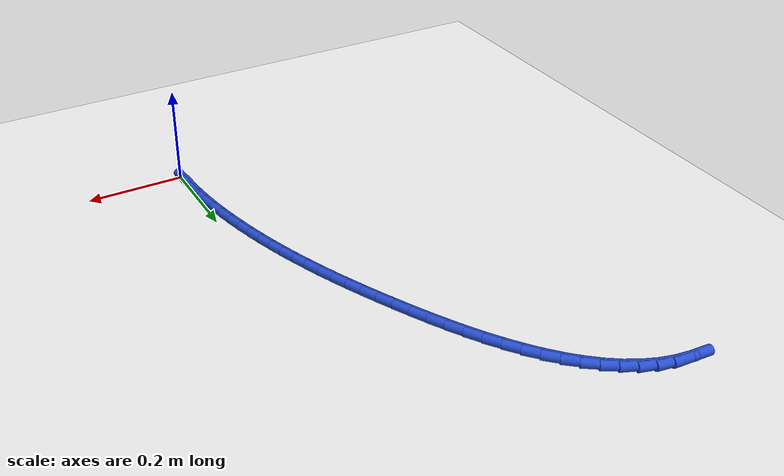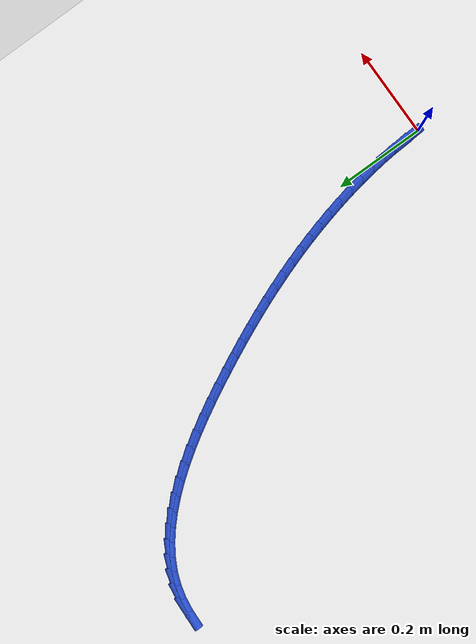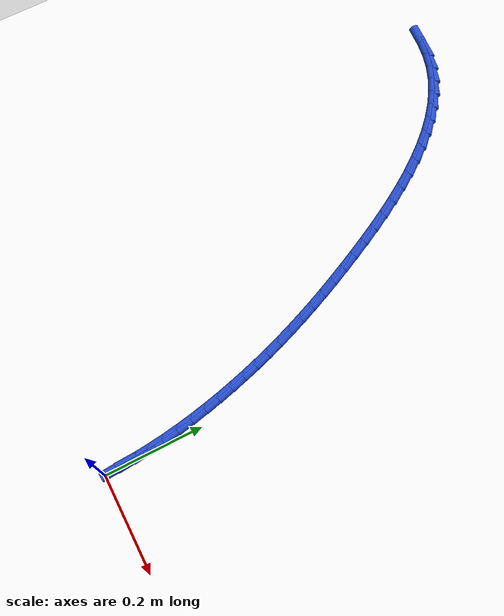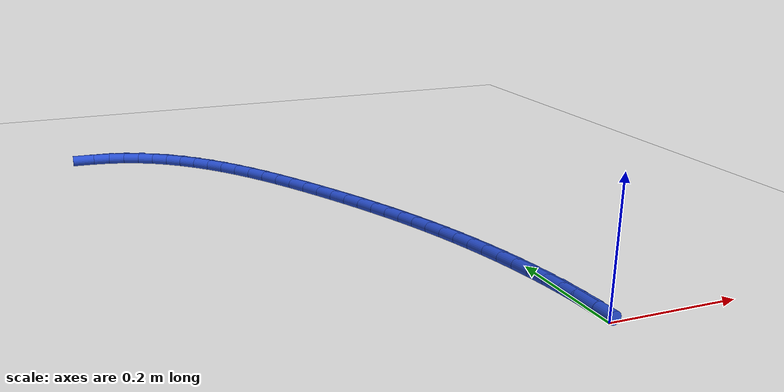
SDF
<sdf version="1.6">
 <world name="default">
  <model name="ground_plane">
   <static>1</static>
   <link name="link">
    <collision name="collision">
     <geometry><plane><normal>0 0 1</normal><size>100 100</size></plane></geometry>
     <surface><friction><ode><mu>100</mu><mu2>50</mu2></ode></friction></surface>
    </collision>
    <visual name="visual">
     <cast_shadows>0</cast_shadows>
     <geometry><plane><normal>0 0 1</normal><size>100 100</size></plane></geometry>
     <material>
      <script><uri>file://media/materials/scripts/gazebo.material</uri><name>Gazebo/WhiteGlow</name></script>
     </material>
    </visual>
   </link>
  </model>
  <model name="line">
   <link name="link_2">
    <pose>-0.002640127792043446 0.06468163625894327 0.01 0 1.57 -1.4796041190122342</pose>
    <collision name="collision">
     <geometry><cylinder><radius>0.01</radius><length>0.08</length></cylinder></geometry>
    </collision>
    <visual name="visual">
     <material>
      <script><name>Gazebo/Blue</name><uri>file://media/materials/scripts/gazebo.material</uri></script>
     </material>
     <geometry><cylinder><radius>0.01</radius><length>0.08</length></cylinder></geometry>
    </visual>
   </link>
   <link name="link_3">
    <pose>-0.005595584413329633 0.09700083987464508 0.01 0 1.57 -1.4486975101030588</pose>
    <collision name="collision">
     <geometry><cylinder><radius>0.01</radius><length>0.08</length></cylinder></geometry>
    </collision>
    <visual name="visual">
     <material>
      <script><name>Gazebo/Blue</name><uri>file://media/materials/scripts/gazebo.material</uri></script>
     </material>
     <geometry><cylinder><radius>0.01</radius><length>0.08</length></cylinder></geometry>
    </visual>
   </link>
   <link name="link_4">
    <pose>-0.009550587201882366 0.1292315317612789 0.01 0 1.57 -1.4196662057281555</pose>
    <collision name="collision">
     <geometry><cylinder><radius>0.01</radius><length>0.08</length></cylinder></geometry>
    </collision>
    <visual name="visual">
     <material>
      <script><name>Gazebo/Blue</name><uri>file://media/materials/scripts/gazebo.material</uri></script>
     </material>
     <geometry><cylinder><radius>0.01</radius><length>0.08</length></cylinder></geometry>
    </visual>
   </link>
   <link name="link_5">
    <pose>-0.014437099420519316 0.16131813537892853 0.01 0 1.57 -1.3923894360186462</pose>
    <collision name="collision">
     <geometry><cylinder><radius>0.01</radius><length>0.08</length></cylinder></geometry>
    </collision>
    <visual name="visual">
     <material>
      <script><name>Gazebo/Blue</name><uri>file://media/materials/scripts/gazebo.material</uri></script>
     </material>
     <geometry><cylinder><radius>0.01</radius><length>0.08</length></cylinder></geometry>
    </visual>
   </link>
   <link name="link_6">
    <pose>-0.020187084332058153 0.19320507418767763 0.01 0 1.57 -1.3667501006793694</pose>
    <collision name="collision">
     <geometry><cylinder><radius>0.01</radius><length>0.08</length></cylinder></geometry>
    </collision>
    <visual name="visual">
     <material>
      <script><name>Gazebo/Blue</name><uri>file://media/materials/scripts/gazebo.material</uri></script>
     </material>
     <geometry><cylinder><radius>0.01</radius><length>0.08</length></cylinder></geometry>
    </visual>
   </link>
   <link name="link_7">
    <pose>-0.026732505199316553 0.22483677164761018 0.01 0 1.57 -1.3426360899340068</pose>
    <collision name="collision">
     <geometry><cylinder><radius>0.01</radius><length>0.08</length></cylinder></geometry>
    </collision>
    <visual name="visual">
     <material>
      <script><name>Gazebo/Blue</name><uri>file://media/materials/scripts/gazebo.material</uri></script>
     </material>
     <geometry><cylinder><radius>0.01</radius><length>0.08</length></cylinder></geometry>
    </visual>
   </link>
   <link name="link_8">
    <pose>-0.0340053252851122 0.2561576512188099 0.01 0 1.57 -1.319939995945289</pose>
    <collision name="collision">
     <geometry><cylinder><radius>0.01</radius><length>0.08</length></cylinder></geometry>
    </collision>
    <visual name="visual">
     <material>
      <script><name>Gazebo/Blue</name><uri>file://media/materials/scripts/gazebo.material</uri></script>
     </material>
     <geometry><cylinder><radius>0.01</radius><length>0.08</length></cylinder></geometry>
    </visual>
   </link>
   <link name="link_9">
    <pose>-0.0419375745196763 0.2871122526668698 0.01 0 1.57 -1.2982507750133787</pose>
    <collision name="collision">
     <geometry><cylinder><radius>0.01</radius><length>0.08</length></cylinder></geometry>
    </collision>
    <visual name="visual">
     <material>
      <script><name>Gazebo/Blue</name><uri>file://media/materials/scripts/gazebo.material</uri></script>
     </material>
     <geometry><cylinder><radius>0.01</radius><length>0.08</length></cylinder></geometry>
    </visual>
   </link>
   <link name="link_10">
    <pose>-0.05048127783847042 0.3176799983055524 0.01 0 1.57 -1.2768563255201584</pose>
    <collision name="collision">
     <geometry><cylinder><radius>0.01</radius><length>0.08</length></cylinder></geometry>
    </collision>
    <visual name="visual">
     <material>
      <script><name>Gazebo/Blue</name><uri>file://media/materials/scripts/gazebo.material</uri></script>
     </material>
     <geometry><cylinder><radius>0.01</radius><length>0.08</length></cylinder></geometry>
    </visual>
   </link>
   <link name="link_11">
    <pose>-0.05963636618580562 0.3479238855035927 0.01 0 1.57 -1.255811889309616</pose>
    <collision name="collision">
     <geometry><cylinder><radius>0.01</radius><length>0.08</length></cylinder></geometry>
    </collision>
    <visual name="visual">
     <material>
      <script><name>Gazebo/Blue</name><uri>file://media/materials/scripts/gazebo.material</uri></script>
     </material>
     <geometry><cylinder><radius>0.01</radius><length>0.08</length></cylinder></geometry>
    </visual>
   </link>
   <link name="link_12">
    <pose>-0.06940979589705236 0.3779191678676826 0.01 0 1.57 -1.2352854865000094</pose>
    <collision name="collision">
     <geometry><cylinder><radius>0.01</radius><length>0.08</length></cylinder></geometry>
    </collision>
    <visual name="visual">
     <material>
      <script><name>Gazebo/Blue</name><uri>file://media/materials/scripts/gazebo.material</uri></script>
     </material>
     <geometry><cylinder><radius>0.01</radius><length>0.08</length></cylinder></geometry>
    </visual>
   </link>
   <link name="link_13">
    <pose>-0.07980852330758101 0.40774109900451294 0.01 0 1.57 -1.2154354065618396</pose>
    <collision name="collision">
     <geometry><cylinder><radius>0.01</radius><length>0.08</length></cylinder></geometry>
    </collision>
    <visual name="visual">
     <material>
      <script><name>Gazebo/Blue</name><uri>file://media/materials/scripts/gazebo.material</uri></script>
     </material>
     <geometry><cylinder><radius>0.01</radius><length>0.08</length></cylinder></geometry>
    </visual>
   </link>
   <link name="link_14">
    <pose>-0.090839504752762 0.4374649325207753 0.01 0 1.57 -1.196405954214558</pose>
    <collision name="collision">
     <geometry><cylinder><radius>0.01</radius><length>0.08</length></cylinder></geometry>
    </collision>
    <visual name="visual">
     <material>
      <script><name>Gazebo/Blue</name><uri>file://media/materials/scripts/gazebo.material</uri></script>
     </material>
     <geometry><cylinder><radius>0.01</radius><length>0.08</length></cylinder></geometry>
    </visual>
   </link>
   <link name="link_15">
    <pose>-0.10250969656796577 0.4671659220231611 0.01 0 1.57 -1.1783239818852502</pose>
    <collision name="collision">
     <geometry><cylinder><radius>0.01</radius><length>0.08</length></cylinder></geometry>
    </collision>
    <visual name="visual">
     <material>
      <script><name>Gazebo/Blue</name><uri>file://media/materials/scripts/gazebo.material</uri></script>
     </material>
     <geometry><cylinder><radius>0.01</radius><length>0.08</length></cylinder></geometry>
    </visual>
   </link>
   <link name="link_16">
    <pose>-0.11482605508856275 0.4969193211183616 0.01 0 1.57 -1.1612963700176924</pose>
    <collision name="collision">
     <geometry><cylinder><radius>0.01</radius><length>0.08</length></cylinder></geometry>
    </collision>
    <visual name="visual">
     <material>
      <script><name>Gazebo/Blue</name><uri>file://media/materials/scripts/gazebo.material</uri></script>
     </material>
     <geometry><cylinder><radius>0.01</radius><length>0.08</length></cylinder></geometry>
    </visual>
   </link>
   <link name="link_17">
    <pose>-0.12779553664992332 0.5268003834130682 0.01 0 1.57 -1.1454085234126348</pose>
    <collision name="collision">
     <geometry><cylinder><radius>0.01</radius><length>0.08</length></cylinder></geometry>
    </collision>
    <visual name="visual">
     <material>
      <script><name>Gazebo/Blue</name><uri>file://media/materials/scripts/gazebo.material</uri></script>
     </material>
     <geometry><cylinder><radius>0.01</radius><length>0.08</length></cylinder></geometry>
    </visual>
   </link>
   <link name="link_18">
    <pose>-0.1414250975874179 0.5568843625139722 0.01 0 1.57 -1.1307238626450877</pose>
    <collision name="collision">
     <geometry><cylinder><radius>0.01</radius><length>0.08</length></cylinder></geometry>
    </collision>
    <visual name="visual">
     <material>
      <script><name>Gazebo/Blue</name><uri>file://media/materials/scripts/gazebo.material</uri></script>
     </material>
     <geometry><cylinder><radius>0.01</radius><length>0.08</length></cylinder></geometry>
    </visual>
   </link>
   <link name="link_19">
    <pose>-0.15572169423641688 0.587246512027765 0.01 0 1.57 -1.117283887355243</pose>
    <collision name="collision">
     <geometry><cylinder><radius>0.01</radius><length>0.08</length></cylinder></geometry>
    </collision>
    <visual name="visual">
     <material>
      <script><name>Gazebo/Blue</name><uri>file://media/materials/scripts/gazebo.material</uri></script>
     </material>
     <geometry><cylinder><radius>0.01</radius><length>0.08</length></cylinder></geometry>
    </visual>
   </link>
   <link name="link_20">
    <pose>-0.17069228479510767 0.6179620637843862 0.01 0 1.57 -1.104023860555358</pose>
    <collision name="collision">
     <geometry><cylinder><radius>0.01</radius><length>0.08</length></cylinder></geometry>
    </collision>
    <visual name="visual">
     <material>
      <script><name>Gazebo/Blue</name><uri>file://media/materials/scripts/gazebo.material</uri></script>
     </material>
     <geometry><cylinder><radius>0.01</radius><length>0.08</length></cylinder></geometry>
    </visual>
   </link>
   <link name="link_21">
    <pose>-0.18634997945250809 0.6490343314463008 0.01 0 1.57 -1.0874084788218168</pose>
    <collision name="collision">
     <geometry><cylinder><radius>0.01</radius><length>0.08</length></cylinder></geometry>
    </collision>
    <visual name="visual">
     <material>
      <script><name>Gazebo/Blue</name><uri>file://media/materials/scripts/gazebo.material</uri></script>
     </material>
     <geometry><cylinder><radius>0.01</radius><length>0.08</length></cylinder></geometry>
    </visual>
   </link>
   <link name="link_22">
    <pose>-0.2027277406531573 0.6802345513083949 0.01 0 1.57 -1.0665742777429101</pose>
    <collision name="collision">
     <geometry><cylinder><radius>0.01</radius><length>0.08</length></cylinder></geometry>
    </collision>
    <visual name="visual">
     <material>
      <script><name>Gazebo/Blue</name><uri>file://media/materials/scripts/gazebo.material</uri></script>
     </material>
     <geometry><cylinder><radius>0.01</radius><length>0.08</length></cylinder></geometry>
    </visual>
   </link>
   <link name="link_23">
    <pose>-0.21986252773545875 0.7112872350701809 0.01 0 1.57 -1.041225801698727</pose>
    <collision name="collision">
     <geometry><cylinder><radius>0.01</radius><length>0.08</length></cylinder></geometry>
    </collision>
    <visual name="visual">
     <material>
      <script><name>Gazebo/Blue</name><uri>file://media/materials/scripts/gazebo.material</uri></script>
     </material>
     <geometry><cylinder><radius>0.01</radius><length>0.08</length></cylinder></geometry>
    </visual>
   </link>
   <link name="link_24">
    <pose>-0.2377913000378159 0.7419168944311705 0.01 0 1.57 -1.0109306822628294</pose>
    <collision name="collision">
     <geometry><cylinder><radius>0.01</radius><length>0.08</length></cylinder></geometry>
    </collision>
    <visual name="visual">
     <material>
      <script><name>Gazebo/Blue</name><uri>file://media/materials/scripts/gazebo.material</uri></script>
     </material>
     <geometry><cylinder><radius>0.01</radius><length>0.08</length></cylinder></geometry>
    </visual>
   </link>
   <link name="link_25">
    <pose>-0.25655101689863197 0.7718480410908758 0.01 0 1.57 -0.9751145238123848</pose>
    <collision name="collision">
     <geometry><cylinder><radius>0.01</radius><length>0.08</length></cylinder></geometry>
    </collision>
    <visual name="visual">
     <material>
      <script><name>Gazebo/Blue</name><uri>file://media/materials/scripts/gazebo.material</uri></script>
     </material>
     <geometry><cylinder><radius>0.01</radius><length>0.08</length></cylinder></geometry>
    </visual>
   </link>
   <link name="link_26">
    <pose>-0.2761786376563105 0.8008051867488085 0.01 0 1.57 -0.93305426914714</pose>
    <collision name="collision">
     <geometry><cylinder><radius>0.01</radius><length>0.08</length></cylinder></geometry>
    </collision>
    <visual name="visual">
     <material>
      <script><name>Gazebo/Blue</name><uri>file://media/materials/scripts/gazebo.material</uri></script>
     </material>
     <geometry><cylinder><radius>0.01</radius><length>0.08</length></cylinder></geometry>
    </visual>
   </link>
   <link name="link_27">
    <pose>-0.2967111216492549 0.8285128431044805 0.01 0 1.57 -0.8838756895190978</pose>
    <collision name="collision">
     <geometry><cylinder><radius>0.01</radius><length>0.08</length></cylinder></geometry>
    </collision>
    <visual name="visual">
     <material>
      <script><name>Gazebo/Blue</name><uri>file://media/materials/scripts/gazebo.material</uri></script>
     </material>
     <geometry><cylinder><radius>0.01</radius><length>0.08</length></cylinder></geometry>
    </visual>
   </link>
   <link name="link_28">
    <pose>-0.3181854282158685 0.8546955218574042 0.01 0 1.57 -0.826564430199759</pose>
    <collision name="collision">
     <geometry><cylinder><radius>0.01</radius><length>0.08</length></cylinder></geometry>
    </collision>
    <visual name="visual">
     <material>
      <script><name>Gazebo/Blue</name><uri>file://media/materials/scripts/gazebo.material</uri></script>
     </material>
     <geometry><cylinder><radius>0.01</radius><length>0.08</length></cylinder></geometry>
    </visual>
   </link>
   <link name="link_29">
    <pose>-0.3406385166945547 0.8790777347070909 0.01 0 1.57 -0.7600061596608447</pose>
    <collision name="collision">
     <geometry><cylinder><radius>0.01</radius><length>0.08</length></cylinder></geometry>
    </collision>
    <visual name="visual">
     <material>
      <script><name>Gazebo/Blue</name><uri>file://media/materials/scripts/gazebo.material</uri></script>
     </material>
     <geometry><cylinder><radius>0.01</radius><length>0.08</length></cylinder></geometry>
    </visual>
   </link>
   <link name="link_30">
    <pose>-0.36410734642371706 0.901383993353053 0.01 0 1.57 -0.6830793605900667</pose>
    <collision name="collision">
     <geometry><cylinder><radius>0.01</radius><length>0.08</length></cylinder></geometry>
    </collision>
    <visual name="visual">
     <material>
      <script><name>Gazebo/Blue</name><uri>file://media/materials/scripts/gazebo.material</uri></script>
     </material>
     <geometry><cylinder><radius>0.01</radius><length>0.08</length></cylinder></geometry>
    </visual>
   </link>
   <link name="link_31">
    <pose>-0.3886288767417589 0.9213388094948021 0.01 0 1.57 -0.5948307333020056</pose>
    <collision name="collision">
     <geometry><cylinder><radius>0.01</radius><length>0.08</length></cylinder></geometry>
    </collision>
    <visual name="visual">
     <material>
      <script><name>Gazebo/Blue</name><uri>file://media/materials/scripts/gazebo.material</uri></script>
     </material>
     <geometry><cylinder><radius>0.01</radius><length>0.08</length></cylinder></geometry>
    </visual>
   </link>
   <link name="link_32">
    <pose>-0.4142400669870835 0.9386666948318501 0.01 0 1.57 -0.49475817461183097</pose>
    <collision name="collision">
     <geometry><cylinder><radius>0.01</radius><length>0.08</length></cylinder></geometry>
    </collision>
    <visual name="visual">
     <material>
      <script><name>Gazebo/Blue</name><uri>file://media/materials/scripts/gazebo.material</uri></script>
     </material>
     <geometry><cylinder><radius>0.01</radius><length>0.08</length></cylinder></geometry>
    </visual>
   </link>
   <link name="link_33">
    <pose>-0.44097787649809433 0.9530921610637092 0.01 0 1.57 -0.38319163222508473</pose>
    <collision name="collision">
     <geometry><cylinder><radius>0.01</radius><length>0.08</length></cylinder></geometry>
    </collision>
    <visual name="visual">
     <material>
      <script><name>Gazebo/Blue</name><uri>file://media/materials/scripts/gazebo.material</uri></script>
     </material>
     <geometry><cylinder><radius>0.01</radius><length>0.08</length></cylinder></geometry>
    </visual>
   </link>
   <link name="link_34">
    <pose>-0.46887926461319485 0.9643397198898909 0.01 0 1.57 -0.26172835505001213</pose>
    <collision name="collision">
     <geometry><cylinder><radius>0.01</radius><length>0.08</length></cylinder></geometry>
    </collision>
    <visual name="visual">
     <material>
      <script><name>Gazebo/Blue</name><uri>file://media/materials/scripts/gazebo.material</uri></script>
     </material>
     <geometry><cylinder><radius>0.01</radius><length>0.08</length></cylinder></geometry>
    </visual>
   </link>
   <link name="link_35">
    <pose>-0.4979808915021397 0.972135261770793 0.01 0 1.57 -0.14386309632848734</pose>
    <collision name="collision">
     <geometry><cylinder><radius>0.01</radius><length>0.08</length></cylinder></geometry>
    </collision>
    <visual name="visual">
     <material>
      <script><name>Gazebo/Blue</name><uri>file://media/materials/scripts/gazebo.material</uri></script>
     </material>
     <geometry><cylinder><radius>0.01</radius><length>0.08</length></cylinder></geometry>
    </visual>
   </link>
   <link name="link_36">
    <pose>-0.5282509329211491 0.9765202972394422 0.01 0 1.57 -0.05536648467017081</pose>
    <collision name="collision">
     <geometry><cylinder><radius>0.01</radius><length>0.08</length></cylinder></geometry>
    </collision>
    <visual name="visual">
     <material>
      <script><name>Gazebo/Blue</name><uri>file://media/materials/scripts/gazebo.material</uri></script>
     </material>
     <geometry><cylinder><radius>0.01</radius><length>0.08</length></cylinder></geometry>
    </visual>
   </link>
   <link name="link_221">
    <pose>-0.000770779062143484 0.03233836039209328 0.01 0 1.57 -1.5086337403496524</pose>
    <collision name="collision">
     <geometry><cylinder><radius>0.01</radius><length>0.08</length></cylinder></geometry>
    </collision>
    <visual name="visual">
     <material>
      <script><name>Gazebo/Blue</name><uri>file://media/materials/scripts/gazebo.material</uri></script>
     </material>
     <geometry><cylinder><radius>0.01</radius><length>0.08</length></cylinder></geometry>
    </visual>
   </link>
   <link name="link_222">
    <pose>-0.002788327687542608 0.0647525397629808 0.01 0 1.57 -1.5277616262090146</pose>
    <collision name="collision">
     <geometry><cylinder><radius>0.01</radius><length>0.08</length></cylinder></geometry>
    </collision>
    <visual name="visual">
     <material>
      <script><name>Gazebo/Blue</name><uri>file://media/materials/scripts/gazebo.material</uri></script>
     </material>
     <geometry><cylinder><radius>0.01</radius><length>0.08</length></cylinder></geometry>
    </visual>
   </link>
  </model>
 </world>
</sdf>
